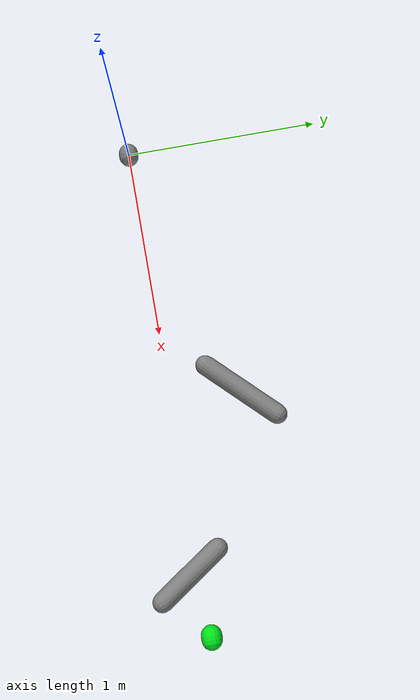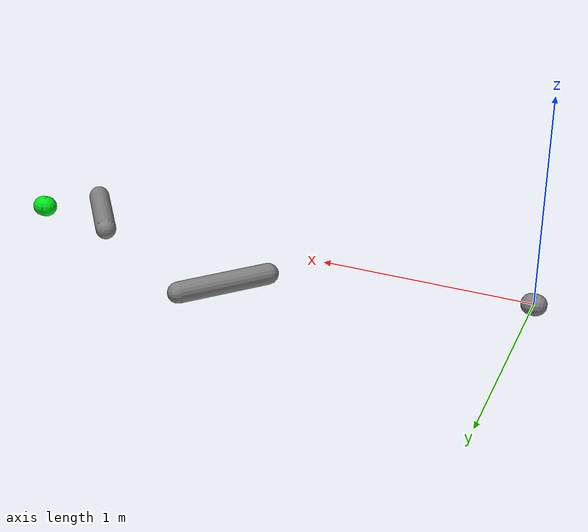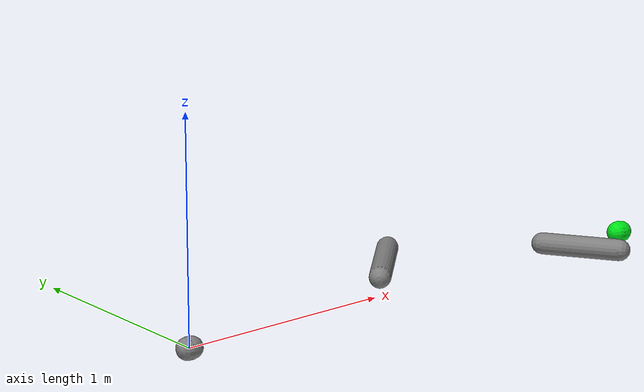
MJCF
<mujoco model="linearparticle">

    <compiler inertiafromgeom="true" angle="radian" coordinate="local" />
    <option timestep="0.01" gravity="0 0 0" iterations="20" integrator="Euler" />
    <default>
        <joint limited="false" damping="1" />
        <geom contype="2" conaffinity="1" condim="1" friction=".5 .1 .1" density="1000" margin="0.002" />
    </default>

    <worldbody>
        <body name="particle" pos="0 0 0">
            <geom name="particle_geom" type="capsule" fromto="-0.01 0 0 0.01 0 0" size="0.05" />
            <site name="particle_site" pos="0 0 0" size="0.01" />
            <joint name="ball_x" type="slide" pos="0 0 0" axis="1 0 0" />
            <joint name="ball_y" type="slide" pos="0 0 0" axis="0 1 0" />
        </body>
        <body name="target" pos="2.5 0 0">
            <geom name="target_geom" type="capsule" fromto="-0.01 0 0 0.01 0 0" size="0.05" rgba="0 0.9 0.1 1"/>
        </body>
        <body name="obs1" pos="1.5 0.5 0">
            <geom name="obs1_geom" type="capsule" fromto="-0.3 -0.3 0 0.01 0.01 0" size="0.05" contype="1"/>
        </body>
        <body name="obs2" pos="2.0 -0.2 0">
            <geom name="obs2_geom" type="capsule" fromto="0.3 0.0 0 0.1 0.3 0" size="0.05" contype="1"/>
        </body>
    </worldbody>

    <actuator>
        <motor joint="ball_x" ctrlrange="-1.0 1.0" ctrllimited="true"/>
        <motor joint="ball_y" ctrlrange="-1.0 1.0" ctrllimited="true"/>
    </actuator>
</mujoco>
